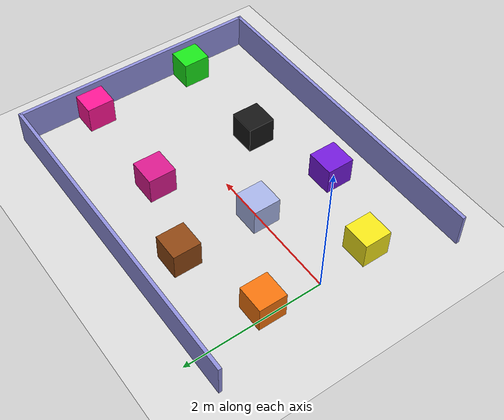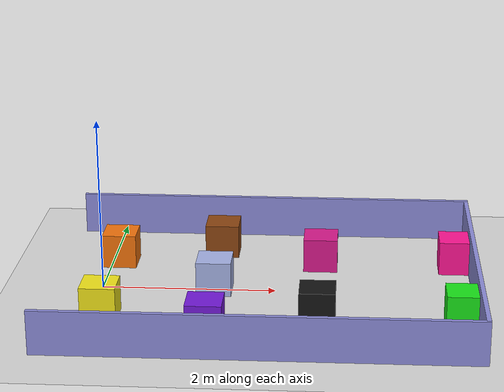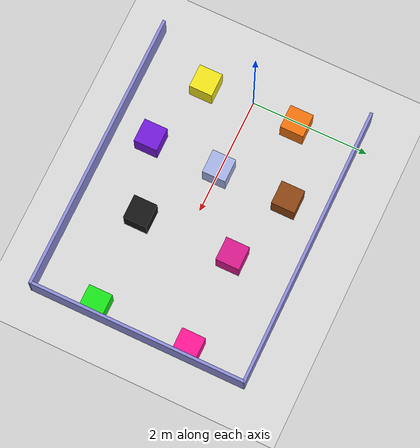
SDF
<sdf version='1.9'>
  <world name='corridor'>
    <physics name='1ms' type='ignored'>
      <max_step_size>0.001</max_step_size>
      <real_time_factor>1</real_time_factor>
      <real_time_update_rate>1000</real_time_update_rate>
    </physics>
    <plugin name='gz::sim::systems::Physics' filename='libgz-sim-physics-system.so'/>
    <plugin name='gz::sim::systems::Sensors' filename='libgz-sim-sensors-system.so'>
      <render_engine>ogre2</render_engine>
    </plugin>
    <plugin name='gz::sim::systems::SceneBroadcaster' filename='libgz-sim-scene-broadcaster-system.so'/>
    <plugin name='gz::sim::systems::UserCommands' filename='libgz-sim-user-commands-system.so'/>
    <gravity>0 0 -9.8</gravity>
    <atmosphere type='adiabatic'/>
    <scene>
      <ambient>0.5 0.5 0.5 1</ambient>
      <background>0.75 0.75 0.75 1</background>
      <shadows>true</shadows>
    </scene>
    <magnetic_field>6e-06 2.3e-05 -4.2e-05</magnetic_field>
    <model name='ground_plane'>
      <static>true</static>
      <link name='link'>
        <collision name='collision'>
          <geometry>
            <plane>
              <normal>0 0 1</normal>
              <size>20 20</size>
            </plane>
          </geometry>
          <surface>
            <friction>
              <ode/>
            </friction>
            <bounce/>
            <contact/>
          </surface>
        </collision>
        <visual name='visual'>
          <geometry>
            <plane>
              <normal>0 0 1</normal>
              <size>20 20</size>
            </plane>
          </geometry>
          <material>
            <ambient>0.85 0.85 0.85 1</ambient>
            <diffuse>0.85 0.85 0.85 1</diffuse>
          </material>
        </visual>
        <pose>0 0 0 0 -0 0</pose>
        <inertial>
          <pose>0 0 0 0 -0 0</pose>
          <mass>1</mass>
          <inertia>
            <ixx>1</ixx>
            <ixy>0</ixy>
            <ixz>0</ixz>
            <iyy>1</iyy>
            <iyz>0</iyz>
            <izz>1</izz>
          </inertia>
        </inertial>
        <enable_wind>false</enable_wind>
      </link>
      <pose>0 0 0 0 -0 0</pose>
      <self_collide>false</self_collide>
    </model>
    <model name='wall_depan'>
      <static>true</static>
      <pose>4.27519 0 0.25 0 -0 0</pose>
      <link name='link'>
        <collision name='collision'>
          <geometry>
            <box>
              <size>0.05 3.65 0.5</size>
            </box>
          </geometry>
          <surface>
            <friction>
              <ode/>
            </friction>
            <bounce/>
            <contact/>
          </surface>
        </collision>
        <visual name='visual'>
          <geometry>
            <box>
              <size>0.05 3.65 0.5</size>
            </box>
          </geometry>
          <material>
            <ambient>0.55 0.55 0.85 1</ambient>
            <diffuse>0.55 0.55 0.85 1</diffuse>
          </material>
        </visual>
        <pose>0 0 0 0 -0 0</pose>
        <inertial>
          <pose>0 0 0 0 -0 0</pose>
          <mass>1</mass>
          <inertia>
            <ixx>1</ixx>
            <ixy>0</ixy>
            <ixz>0</ixz>
            <iyy>1</iyy>
            <iyz>0</iyz>
            <izz>1</izz>
          </inertia>
        </inertial>
        <enable_wind>false</enable_wind>
      </link>
      <self_collide>false</self_collide>
    </model>
    <model name='wall_kiri'>
      <static>true</static>
      <pose>1.9 1.825 0.25 0 -0 0</pose>
      <link name='link'>
        <collision name='collision'>
          <geometry>
            <box>
              <size>4.8 0.05 0.5</size>
            </box>
          </geometry>
          <surface>
            <friction>
              <ode/>
            </friction>
            <bounce/>
            <contact/>
          </surface>
        </collision>
        <visual name='visual'>
          <geometry>
            <box>
              <size>4.8 0.05 0.5</size>
            </box>
          </geometry>
          <material>
            <ambient>0.55 0.55 0.85 1</ambient>
            <diffuse>0.55 0.55 0.85 1</diffuse>
          </material>
        </visual>
        <pose>0 0 0 0 -0 0</pose>
        <inertial>
          <pose>0 0 0 0 -0 0</pose>
          <mass>1</mass>
          <inertia>
            <ixx>1</ixx>
            <ixy>0</ixy>
            <ixz>0</ixz>
            <iyy>1</iyy>
            <iyz>0</iyz>
            <izz>1</izz>
          </inertia>
        </inertial>
        <enable_wind>false</enable_wind>
      </link>
      <self_collide>false</self_collide>
    </model>
    <model name='wall_kanan'>
      <static>true</static>
      <pose>1.9 -1.825 0.25 0 -0 0</pose>
      <link name='link'>
        <collision name='collision'>
          <geometry>
            <box>
              <size>4.8 0.05 0.5</size>
            </box>
          </geometry>
          <surface>
            <friction>
              <ode/>
            </friction>
            <bounce/>
            <contact/>
          </surface>
        </collision>
        <visual name='visual'>
          <geometry>
            <box>
              <size>4.8 0.05 0.5</size>
            </box>
          </geometry>
          <material>
            <ambient>0.55 0.55 0.85 1</ambient>
            <diffuse>0.55 0.55 0.85 1</diffuse>
          </material>
        </visual>
        <pose>0 0 0 0 -0 0</pose>
        <inertial>
          <pose>0 0 0 0 -0 0</pose>
          <mass>1</mass>
          <inertia>
            <ixx>1</ixx>
            <ixy>0</ixy>
            <ixz>0</ixz>
            <iyy>1</iyy>
            <iyz>0</iyz>
            <izz>1</izz>
          </inertia>
        </inertial>
        <enable_wind>false</enable_wind>
      </link>
      <self_collide>false</self_collide>
    </model>
    <model name='obstacle_orange'>
      <static>true</static>
      <pose>0.1 0.8 0.2 0 -0 0</pose>
      <link name='link'>
        <collision name='collision'>
          <geometry>
            <box>
              <size>0.4 0.4 0.4</size>
            </box>
          </geometry>
          <surface>
            <friction>
              <ode/>
            </friction>
            <bounce/>
            <contact/>
          </surface>
        </collision>
        <visual name='visual'>
          <geometry>
            <box>
              <size>0.4 0.4 0.4</size>
            </box>
          </geometry>
          <material>
            <ambient>0.95 0.45 0.05 1</ambient>
            <diffuse>0.95 0.45 0.05 1</diffuse>
          </material>
        </visual>
        <pose>0 0 0 0 -0 0</pose>
        <inertial>
          <pose>0 0 0 0 -0 0</pose>
          <mass>1</mass>
          <inertia>
            <ixx>1</ixx>
            <ixy>0</ixy>
            <ixz>0</ixz>
            <iyy>1</iyy>
            <iyz>0</iyz>
            <izz>1</izz>
          </inertia>
        </inertial>
        <enable_wind>false</enable_wind>
      </link>
      <self_collide>false</self_collide>
    </model>
    <model name='obstacle_dark_orange'>
      <static>true</static>
      <pose>1.3 1.2 0.2 0 -0 0</pose>
      <link name='link'>
        <collision name='collision'>
          <geometry>
            <box>
              <size>0.4 0.4 0.4</size>
            </box>
          </geometry>
          <surface>
            <friction>
              <ode/>
            </friction>
            <bounce/>
            <contact/>
          </surface>
        </collision>
        <visual name='visual'>
          <geometry>
            <box>
              <size>0.4 0.4 0.4</size>
            </box>
          </geometry>
          <material>
            <ambient>0.55 0.27 0.07 1</ambient>
            <diffuse>0.55 0.27 0.07 1</diffuse>
          </material>
        </visual>
        <pose>0 0 0 0 -0 0</pose>
        <inertial>
          <pose>0 0 0 0 -0 0</pose>
          <mass>1</mass>
          <inertia>
            <ixx>1</ixx>
            <ixy>0</ixy>
            <ixz>0</ixz>
            <iyy>1</iyy>
            <iyz>0</iyz>
            <izz>1</izz>
          </inertia>
        </inertial>
        <enable_wind>false</enable_wind>
      </link>
      <self_collide>false</self_collide>
    </model>
    <model name='obstacle_magenta'>
      <static>true</static>
      <pose>2.5 0.8 0.2 0 -0 0</pose>
      <link name='link'>
        <collision name='collision'>
          <geometry>
            <box>
              <size>0.4 0.4 0.4</size>
            </box>
          </geometry>
          <surface>
            <friction>
              <ode/>
            </friction>
            <bounce/>
            <contact/>
          </surface>
        </collision>
        <visual name='visual'>
          <geometry>
            <box>
              <size>0.4 0.4 0.4</size>
            </box>
          </geometry>
          <material>
            <ambient>0.85 0.1 0.55 1</ambient>
            <diffuse>0.85 0.1 0.55 1</diffuse>
          </material>
        </visual>
        <pose>0 0 0 0 -0 0</pose>
        <inertial>
          <pose>0 0 0 0 -0 0</pose>
          <mass>1</mass>
          <inertia>
            <ixx>1</ixx>
            <ixy>0</ixy>
            <ixz>0</ixz>
            <iyy>1</iyy>
            <iyz>0</iyz>
            <izz>1</izz>
          </inertia>
        </inertial>
        <enable_wind>false</enable_wind>
      </link>
      <self_collide>false</self_collide>
    </model>
    <model name='obstacle_gray_blue'>
      <static>true</static>
      <pose>1.3 0 0.2 0 -0 0</pose>
      <link name='link'>
        <collision name='collision'>
          <geometry>
            <box>
              <size>0.4 0.4 0.4</size>
            </box>
          </geometry>
          <surface>
            <friction>
              <ode/>
            </friction>
            <bounce/>
            <contact/>
          </surface>
        </collision>
        <visual name='visual'>
          <geometry>
            <box>
              <size>0.4 0.4 0.4</size>
            </box>
          </geometry>
          <material>
            <ambient>0.65 0.7 0.9 1</ambient>
            <diffuse>0.65 0.7 0.9 1</diffuse>
          </material>
        </visual>
        <pose>0 0 0 0 -0 0</pose>
        <inertial>
          <pose>0 0 0 0 -0 0</pose>
          <mass>1</mass>
          <inertia>
            <ixx>1</ixx>
            <ixy>0</ixy>
            <ixz>0</ixz>
            <iyy>1</iyy>
            <iyz>0</iyz>
            <izz>1</izz>
          </inertia>
        </inertial>
        <enable_wind>false</enable_wind>
      </link>
      <self_collide>false</self_collide>
    </model>
    <model name='obstacle_yellow'>
      <static>true</static>
      <pose>0.1 -0.8 0.2 0 -0 0</pose>
      <link name='link'>
        <collision name='collision'>
          <geometry>
            <box>
              <size>0.4 0.4 0.4</size>
            </box>
          </geometry>
          <surface>
            <friction>
              <ode/>
            </friction>
            <bounce/>
            <contact/>
          </surface>
        </collision>
        <visual name='visual'>
          <geometry>
            <box>
              <size>0.4 0.4 0.4</size>
            </box>
          </geometry>
          <material>
            <ambient>0.95 0.9 0.1 1</ambient>
            <diffuse>0.95 0.9 0.1 1</diffuse>
          </material>
        </visual>
        <pose>0 0 0 0 -0 0</pose>
        <inertial>
          <pose>0 0 0 0 -0 0</pose>
          <mass>1</mass>
          <inertia>
            <ixx>1</ixx>
            <ixy>0</ixy>
            <ixz>0</ixz>
            <iyy>1</iyy>
            <iyz>0</iyz>
            <izz>1</izz>
          </inertia>
        </inertial>
        <enable_wind>false</enable_wind>
      </link>
      <self_collide>false</self_collide>
    </model>
    <model name='obstacle_purple'>
      <static>true</static>
      <pose>1.3 -1.2 0.2 0 -0 0</pose>
      <link name='link'>
        <collision name='collision'>
          <geometry>
            <box>
              <size>0.4 0.4 0.4</size>
            </box>
          </geometry>
          <surface>
            <friction>
              <ode/>
            </friction>
            <bounce/>
            <contact/>
          </surface>
        </collision>
        <visual name='visual'>
          <geometry>
            <box>
              <size>0.4 0.4 0.4</size>
            </box>
          </geometry>
          <material>
            <ambient>0.45 0.1 0.85 1</ambient>
            <diffuse>0.45 0.1 0.85 1</diffuse>
          </material>
        </visual>
        <pose>0 0 0 0 -0 0</pose>
        <inertial>
          <pose>0 0 0 0 -0 0</pose>
          <mass>1</mass>
          <inertia>
            <ixx>1</ixx>
            <ixy>0</ixy>
            <ixz>0</ixz>
            <iyy>1</iyy>
            <iyz>0</iyz>
            <izz>1</izz>
          </inertia>
        </inertial>
        <enable_wind>false</enable_wind>
      </link>
      <self_collide>false</self_collide>
    </model>
    <model name='obstacle_black'>
      <static>true</static>
      <pose>2.5 -0.8 0.2 0 -0 0</pose>
      <link name='link'>
        <collision name='collision'>
          <geometry>
            <box>
              <size>0.4 0.4 0.4</size>
            </box>
          </geometry>
          <surface>
            <friction>
              <ode/>
            </friction>
            <bounce/>
            <contact/>
          </surface>
        </collision>
        <visual name='visual'>
          <geometry>
            <box>
              <size>0.4 0.4 0.4</size>
            </box>
          </geometry>
          <material>
            <ambient>0.08 0.08 0.08 1</ambient>
            <diffuse>0.08 0.08 0.08 1</diffuse>
          </material>
        </visual>
        <pose>0 0 0 0 -0 0</pose>
        <inertial>
          <pose>0 0 0 0 -0 0</pose>
          <mass>1</mass>
          <inertia>
            <ixx>1</ixx>
            <ixy>0</ixy>
            <ixz>0</ixz>
            <iyy>1</iyy>
            <iyz>0</iyz>
            <izz>1</izz>
          </inertia>
        </inertial>
        <enable_wind>false</enable_wind>
      </link>
      <self_collide>false</self_collide>
    </model>
    <model name='finish_pink'>
      <static>true</static>
      <pose>4.1 0.8 0.2 0 -0 0</pose>
      <link name='link'>
        <collision name='collision'>
          <geometry>
            <box>
              <size>0.4 0.4 0.4</size>
            </box>
          </geometry>
          <surface>
            <friction>
              <ode/>
            </friction>
            <bounce/>
            <contact/>
          </surface>
        </collision>
        <visual name='visual'>
          <geometry>
            <box>
              <size>0.4 0.4 0.4</size>
            </box>
          </geometry>
          <material>
            <ambient>1 0.08 0.58 1</ambient>
            <diffuse>1 0.08 0.58 1</diffuse>
          </material>
        </visual>
        <pose>0 0 0 0 -0 0</pose>
        <inertial>
          <pose>0 0 0 0 -0 0</pose>
          <mass>1</mass>
          <inertia>
            <ixx>1</ixx>
            <ixy>0</ixy>
            <ixz>0</ixz>
            <iyy>1</iyy>
            <iyz>0</iyz>
            <izz>1</izz>
          </inertia>
        </inertial>
        <enable_wind>false</enable_wind>
      </link>
      <self_collide>false</self_collide>
    </model>
    <model name='finish_green'>
      <static>true</static>
      <pose>4.1 -0.8 0.2 0 -0 0</pose>
      <link name='link'>
        <collision name='collision'>
          <geometry>
            <box>
              <size>0.4 0.4 0.4</size>
            </box>
          </geometry>
          <surface>
            <friction>
              <ode/>
            </friction>
            <bounce/>
            <contact/>
          </surface>
        </collision>
        <visual name='visual'>
          <geometry>
            <box>
              <size>0.4 0.4 0.4</size>
            </box>
          </geometry>
          <material>
            <ambient>0.1 0.9 0.1 1</ambient>
            <diffuse>0.1 0.9 0.1 1</diffuse>
          </material>
        </visual>
        <pose>0 0 0 0 -0 0</pose>
        <inertial>
          <pose>0 0 0 0 -0 0</pose>
          <mass>1</mass>
          <inertia>
            <ixx>1</ixx>
            <ixy>0</ixy>
            <ixz>0</ixz>
            <iyy>1</iyy>
            <iyz>0</iyz>
            <izz>1</izz>
          </inertia>
        </inertial>
        <enable_wind>false</enable_wind>
      </link>
      <self_collide>false</self_collide>
    </model>
    <light name='sun' type='directional'>
      <pose>0 0 10 0 -0 0</pose>
      <cast_shadows>true</cast_shadows>
      <intensity>1</intensity>
      <direction>-0.5 0.1 -0.9</direction>
      <diffuse>0.9 0.9 0.9 1</diffuse>
      <specular>0.3 0.3 0.3 1</specular>
      <attenuation>
        <range>10</range>
        <linear>1</linear>
        <constant>1</constant>
        <quadratic>0</quadratic>
      </attenuation>
      <spot>
        <inner_angle>0</inner_angle>
        <outer_angle>0</outer_angle>
        <falloff>0</falloff>
      </spot>
    </light>
  </world>
</sdf>
